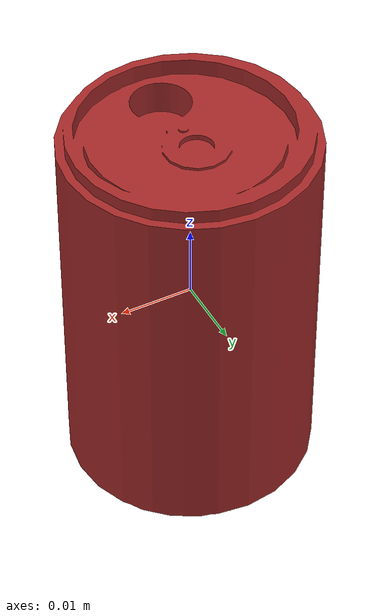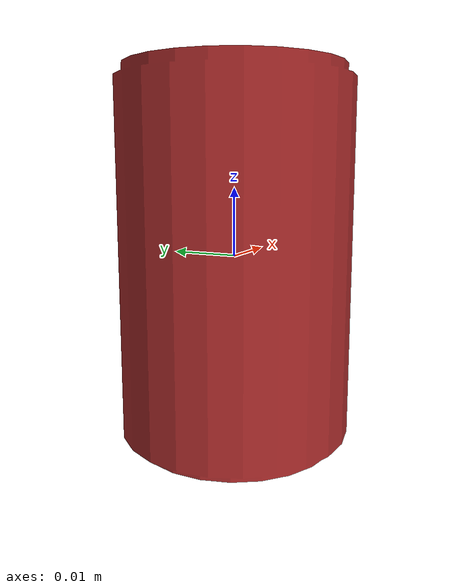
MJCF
<mujoco model="can">
  <asset>
    <mesh file="meshes/can.stl" name="can_mesh" scale="0.68 0.68 0.68"/>
    <texture file="../textures/can.png" name="tex-can"/>
    <material name="coke" reflectance="0.7" texrepeat="5 5" texture="tex-can" texuniform="true"/>
  </asset>
  <worldbody>
    <body>
      <body name="collision">
        <geom pos="0 0 0" mesh="can_mesh" type="mesh" solimp="0.998 0.998 0.001" solref="0.001 1" density="100" friction="0.95 0.3 0.1" rgba="0.65 0.16 0.16 1" group="1" condim="4"/>
      </body>
      <body name="visual">
        <geom pos="0 0 0" mesh="can_mesh" type="mesh" material="coke"  conaffinity="0" contype="0" group="0" mass="0.0001"/>
        <geom pos="0 0 0" mesh="can_mesh" type="mesh" material="coke"  conaffinity="0" contype="0" group="1" mass="0.0001"/>
      </body>
      <site rgba="0 0 0 0" size="0.005" pos="0 0 -0.06" name="bottom_site"/>
      <site rgba="0 0 0 0" size="0.005" pos="0 0 0.04" name="top_site"/>
      <site rgba="0 0 0 0" size="0.005" pos="0.025 0.025 0" name="horizontal_radius_site"/>
    </body>
  </worldbody>
</mujoco>
